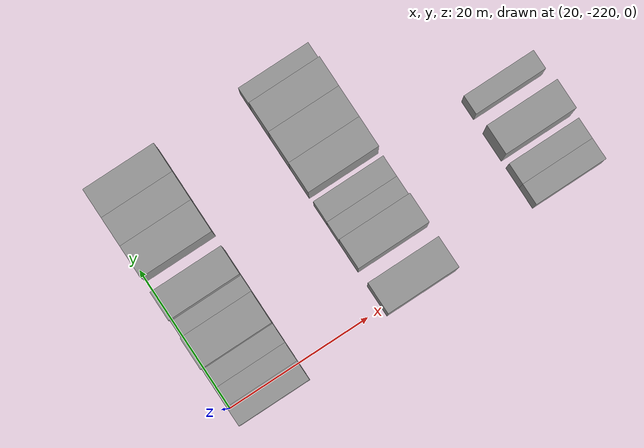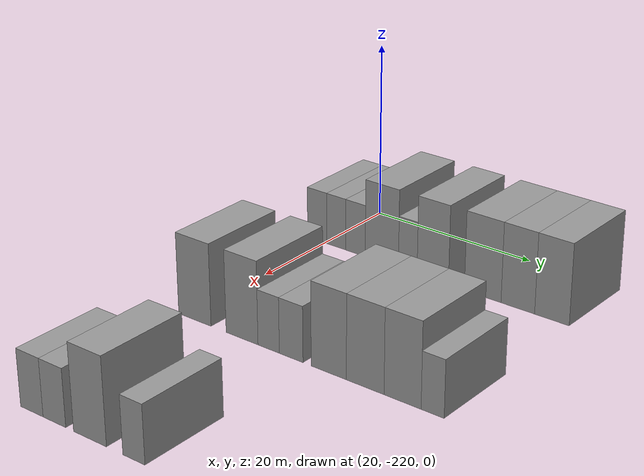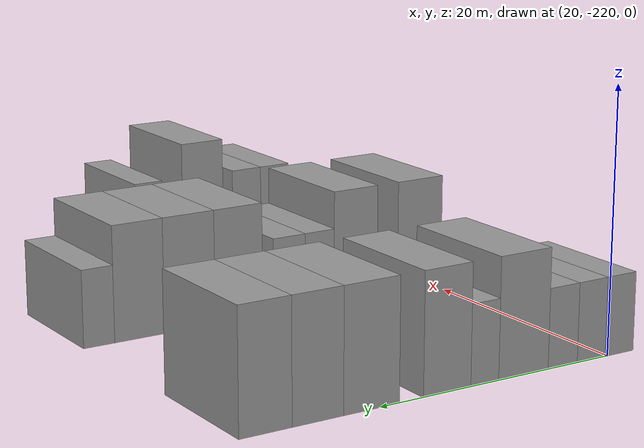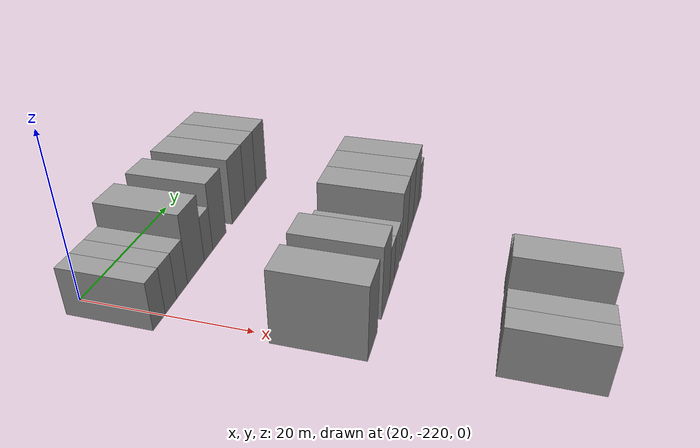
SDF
<sdf version="1.6">
 <world name="default">
  <model name="building_7">
   <static>1</static>
   <pose>25.0000 -221.1104 0 0.000000 0.000000 0.000000</pose>
   <link name="link">
    <pose>0 0 3.00 0 0 0</pose>
    <collision name="collision"><geometry><box><size>10.0000 2.6801 6.0000</size></box></geometry></collision>
    <visual name="visual">
     <cast_shadows>0</cast_shadows>
     <geometry><box><size>10.0000 2.6801 6.0000</size></box></geometry>
     <material>
      <script>
       <uri>model://grey_wall/materials/scripts</uri>
       <uri>model://grey_wall/materials/textures</uri>
       <name>vrc/grey_wall</name>
      </script>
     </material>
    </visual>
   </link>
  </model>
  <model name="building_8">
   <static>1</static>
   <pose>25.0000 -218.4601 0 0.000000 0.000000 0.000000</pose>
   <link name="link">
    <pose>0 0 3.00 0 0 0</pose>
    <collision name="collision"><geometry><box><size>10.0000 2.6207 6.0000</size></box></geometry></collision>
    <visual name="visual">
     <cast_shadows>0</cast_shadows>
     <geometry><box><size>10.0000 2.6207 6.0000</size></box></geometry>
     <material>
      <script>
       <uri>model://grey_wall/materials/scripts</uri>
       <uri>model://grey_wall/materials/textures</uri>
       <name>vrc/grey_wall</name>
      </script>
     </material>
    </visual>
   </link>
  </model>
  <model name="building_9">
   <static>1</static>
   <pose>25.0000 -215.8077 0 0.000000 0.000000 0.000000</pose>
   <link name="link">
    <pose>0 0 3.00 0 0 0</pose>
    <collision name="collision"><geometry><box><size>10.0000 2.6840 6.0000</size></box></geometry></collision>
    <visual name="visual">
     <cast_shadows>0</cast_shadows>
     <geometry><box><size>10.0000 2.6840 6.0000</size></box></geometry>
     <material>
      <script>
       <uri>model://grey_wall/materials/scripts</uri>
       <uri>model://grey_wall/materials/textures</uri>
       <name>vrc/grey_wall</name>
      </script>
     </material>
    </visual>
   </link>
  </model>
  <model name="building_10">
   <static>1</static>
   <pose>25.0000 -212.2497 0 0.000000 0.000000 0.000000</pose>
   <link name="link">
    <pose>0 0 4.50 0 0 0</pose>
    <collision name="collision"><geometry><box><size>10.0000 4.4320 9.0000</size></box></geometry></collision>
    <visual name="visual">
     <cast_shadows>0</cast_shadows>
     <geometry><box><size>10.0000 4.4320 9.0000</size></box></geometry>
     <material>
      <script>
       <uri>model://grey_wall/materials/scripts</uri>
       <uri>model://grey_wall/materials/textures</uri>
       <name>vrc/grey_wall</name>
      </script>
     </material>
    </visual>
   </link>
  </model>
  <model name="building_11">
   <static>1</static>
   <pose>25.0000 -208.8162 0 0.000000 0.000000 0.000000</pose>
   <link name="link">
    <pose>0 0 3.00 0 0 0</pose>
    <collision name="collision"><geometry><box><size>10.0000 2.4350 6.0000</size></box></geometry></collision>
    <visual name="visual">
     <cast_shadows>0</cast_shadows>
     <geometry><box><size>10.0000 2.4350 6.0000</size></box></geometry>
     <material>
      <script>
       <uri>model://grey_wall/materials/scripts</uri>
       <uri>model://grey_wall/materials/textures</uri>
       <name>vrc/grey_wall</name>
      </script>
     </material>
    </visual>
   </link>
  </model>
  <model name="building_12">
   <static>1</static>
   <pose>25.0000 -205.5930 0 0.000000 0.000000 0.000000</pose>
   <link name="link">
    <pose>0 0 4.50 0 0 0</pose>
    <collision name="collision"><geometry><box><size>10.0000 4.0115 9.0000</size></box></geometry></collision>
    <visual name="visual">
     <cast_shadows>0</cast_shadows>
     <geometry><box><size>10.0000 4.0115 9.0000</size></box></geometry>
     <material>
      <script>
       <uri>model://grey_wall/materials/scripts</uri>
       <uri>model://grey_wall/materials/textures</uri>
       <name>vrc/grey_wall</name>
      </script>
     </material>
    </visual>
   </link>
  </model>
  <model name="building_13">
   <static>1</static>
   <pose>25.0000 -199.3401 0 0.000000 0.000000 0.000000</pose>
   <link name="link">
    <pose>0 0 4.50 0 0 0</pose>
    <collision name="collision"><geometry><box><size>10.0000 4.4942 9.0000</size></box></geometry></collision>
    <visual name="visual">
     <cast_shadows>0</cast_shadows>
     <geometry><box><size>10.0000 4.4942 9.0000</size></box></geometry>
     <material>
      <script>
       <uri>model://grey_wall/materials/scripts</uri>
       <uri>model://grey_wall/materials/textures</uri>
       <name>vrc/grey_wall</name>
      </script>
     </material>
    </visual>
   </link>
  </model>
  <model name="building_14">
   <static>1</static>
   <pose>25.0000 -195.0859 0 0.000000 0.000000 0.000000</pose>
   <link name="link">
    <pose>0 0 4.50 0 0 0</pose>
    <collision name="collision"><geometry><box><size>10.0000 4.0142 9.0000</size></box></geometry></collision>
    <visual name="visual">
     <cast_shadows>0</cast_shadows>
     <geometry><box><size>10.0000 4.0142 9.0000</size></box></geometry>
     <material>
      <script>
       <uri>model://grey_wall/materials/scripts</uri>
       <uri>model://grey_wall/materials/textures</uri>
       <name>vrc/grey_wall</name>
      </script>
     </material>
    </visual>
   </link>
  </model>
  <model name="building_15">
   <static>1</static>
   <pose>25.0000 -191.0674 0 0.000000 0.000000 0.000000</pose>
   <link name="link">
    <pose>0 0 4.50 0 0 0</pose>
    <collision name="collision"><geometry><box><size>10.0000 4.0227 9.0000</size></box></geometry></collision>
    <visual name="visual">
     <cast_shadows>0</cast_shadows>
     <geometry><box><size>10.0000 4.0227 9.0000</size></box></geometry>
     <material>
      <script>
       <uri>model://grey_wall/materials/scripts</uri>
       <uri>model://grey_wall/materials/textures</uri>
       <name>vrc/grey_wall</name>
      </script>
     </material>
    </visual>
   </link>
  </model>
  <model name="building_129">
   <static>1</static>
   <pose>47.0000 -218.9601 0 0.000000 0.000000 0.000000</pose>
   <link name="link">
    <pose>0 0 4.50 0 0 0</pose>
    <collision name="collision"><geometry><box><size>10.0000 4.3624 9.0000</size></box></geometry></collision>
    <visual name="visual">
     <cast_shadows>0</cast_shadows>
     <geometry><box><size>10.0000 4.3624 9.0000</size></box></geometry>
     <material>
      <script>
       <uri>model://grey_wall/materials/scripts</uri>
       <uri>model://grey_wall/materials/textures</uri>
       <name>vrc/grey_wall</name>
      </script>
     </material>
    </visual>
   </link>
  </model>
  <model name="building_130">
   <static>1</static>
   <pose>47.0000 -212.7164 0 0.000000 0.000000 0.000000</pose>
   <link name="link">
    <pose>0 0 4.50 0 0 0</pose>
    <collision name="collision"><geometry><box><size>10.0000 4.1249 9.0000</size></box></geometry></collision>
    <visual name="visual">
     <cast_shadows>0</cast_shadows>
     <geometry><box><size>10.0000 4.1249 9.0000</size></box></geometry>
     <material>
      <script>
       <uri>model://grey_wall/materials/scripts</uri>
       <uri>model://grey_wall/materials/textures</uri>
       <name>vrc/grey_wall</name>
      </script>
     </material>
    </visual>
   </link>
  </model>
  <model name="building_131">
   <static>1</static>
   <pose>47.0000 -209.3025 0 0.000000 0.000000 0.000000</pose>
   <link name="link">
    <pose>0 0 3.00 0 0 0</pose>
    <collision name="collision"><geometry><box><size>10.0000 2.7029 6.0000</size></box></geometry></collision>
    <visual name="visual">
     <cast_shadows>0</cast_shadows>
     <geometry><box><size>10.0000 2.7029 6.0000</size></box></geometry>
     <material>
      <script>
       <uri>model://grey_wall/materials/scripts</uri>
       <uri>model://grey_wall/materials/textures</uri>
       <name>vrc/grey_wall</name>
      </script>
     </material>
    </visual>
   </link>
  </model>
  <model name="building_132">
   <static>1</static>
   <pose>47.0000 -206.4843 0 0.000000 0.000000 0.000000</pose>
   <link name="link">
    <pose>0 0 3.00 0 0 0</pose>
    <collision name="collision"><geometry><box><size>10.0000 2.9336 6.0000</size></box></geometry></collision>
    <visual name="visual">
     <cast_shadows>0</cast_shadows>
     <geometry><box><size>10.0000 2.9336 6.0000</size></box></geometry>
     <material>
      <script>
       <uri>model://grey_wall/materials/scripts</uri>
       <uri>model://grey_wall/materials/textures</uri>
       <name>vrc/grey_wall</name>
      </script>
     </material>
    </visual>
   </link>
  </model>
  <model name="building_133">
   <static>1</static>
   <pose>47.0000 -201.9062 0 0.000000 0.000000 0.000000</pose>
   <link name="link">
    <pose>0 0 4.50 0 0 0</pose>
    <collision name="collision"><geometry><box><size>10.0000 4.2226 9.0000</size></box></geometry></collision>
    <visual name="visual">
     <cast_shadows>0</cast_shadows>
     <geometry><box><size>10.0000 4.2226 9.0000</size></box></geometry>
     <material>
      <script>
       <uri>model://grey_wall/materials/scripts</uri>
       <uri>model://grey_wall/materials/textures</uri>
       <name>vrc/grey_wall</name>
      </script>
     </material>
    </visual>
   </link>
  </model>
  <model name="building_134">
   <static>1</static>
   <pose>47.0000 -197.6043 0 0.000000 0.000000 0.000000</pose>
   <link name="link">
    <pose>0 0 4.50 0 0 0</pose>
    <collision name="collision"><geometry><box><size>10.0000 4.3812 9.0000</size></box></geometry></collision>
    <visual name="visual">
     <cast_shadows>0</cast_shadows>
     <geometry><box><size>10.0000 4.3812 9.0000</size></box></geometry>
     <material>
      <script>
       <uri>model://grey_wall/materials/scripts</uri>
       <uri>model://grey_wall/materials/textures</uri>
       <name>vrc/grey_wall</name>
      </script>
     </material>
    </visual>
   </link>
  </model>
  <model name="building_135">
   <static>1</static>
   <pose>47.0000 -193.3291 0 0.000000 0.000000 0.000000</pose>
   <link name="link">
    <pose>0 0 4.50 0 0 0</pose>
    <collision name="collision"><geometry><box><size>10.0000 4.1691 9.0000</size></box></geometry></collision>
    <visual name="visual">
     <cast_shadows>0</cast_shadows>
     <geometry><box><size>10.0000 4.1691 9.0000</size></box></geometry>
     <material>
      <script>
       <uri>model://grey_wall/materials/scripts</uri>
       <uri>model://grey_wall/materials/textures</uri>
       <name>vrc/grey_wall</name>
      </script>
     </material>
    </visual>
   </link>
  </model>
  <model name="building_136">
   <static>1</static>
   <pose>47.0000 -189.9757 0 0.000000 0.000000 0.000000</pose>
   <link name="link">
    <pose>0 0 3.00 0 0 0</pose>
    <collision name="collision"><geometry><box><size>10.0000 2.5377 6.0000</size></box></geometry></collision>
    <visual name="visual">
     <cast_shadows>0</cast_shadows>
     <geometry><box><size>10.0000 2.5377 6.0000</size></box></geometry>
     <material>
      <script>
       <uri>model://grey_wall/materials/scripts</uri>
       <uri>model://grey_wall/materials/textures</uri>
       <name>vrc/grey_wall</name>
      </script>
     </material>
    </visual>
   </link>
  </model>
  <model name="building_237">
   <static>1</static>
   <pose>69.0000 -218.4774 0 0.000000 0.000000 0.000000</pose>
   <link name="link">
    <pose>0 0 3.00 0 0 0</pose>
    <collision name="collision"><geometry><box><size>10.0000 2.9570 6.0000</size></box></geometry></collision>
    <visual name="visual">
     <cast_shadows>0</cast_shadows>
     <geometry><box><size>10.0000 2.9570 6.0000</size></box></geometry>
     <material>
      <script>
       <uri>model://grey_wall/materials/scripts</uri>
       <uri>model://grey_wall/materials/textures</uri>
       <name>vrc/grey_wall</name>
      </script>
     </material>
    </visual>
   </link>
  </model>
  <model name="building_238">
   <static>1</static>
   <pose>69.0000 -215.5367 0 0.000000 0.000000 0.000000</pose>
   <link name="link">
    <pose>0 0 3.00 0 0 0</pose>
    <collision name="collision"><geometry><box><size>10.0000 2.9245 6.0000</size></box></geometry></collision>
    <visual name="visual">
     <cast_shadows>0</cast_shadows>
     <geometry><box><size>10.0000 2.9245 6.0000</size></box></geometry>
     <material>
      <script>
       <uri>model://grey_wall/materials/scripts</uri>
       <uri>model://grey_wall/materials/textures</uri>
       <name>vrc/grey_wall</name>
      </script>
     </material>
    </visual>
   </link>
  </model>
  <model name="building_239">
   <static>1</static>
   <pose>69.0000 -211.0267 0 0.000000 0.000000 0.000000</pose>
   <link name="link">
    <pose>0 0 4.50 0 0 0</pose>
    <collision name="collision"><geometry><box><size>10.0000 4.0953 9.0000</size></box></geometry></collision>
    <visual name="visual">
     <cast_shadows>0</cast_shadows>
     <geometry><box><size>10.0000 4.0953 9.0000</size></box></geometry>
     <material>
      <script>
       <uri>model://grey_wall/materials/scripts</uri>
       <uri>model://grey_wall/materials/textures</uri>
       <name>vrc/grey_wall</name>
      </script>
     </material>
    </visual>
   </link>
  </model>
  <model name="building_240">
   <static>1</static>
   <pose>69.0000 -205.6554 0 0.000000 0.000000 0.000000</pose>
   <link name="link">
    <pose>0 0 3.00 0 0 0</pose>
    <collision name="collision"><geometry><box><size>10.0000 2.6475 6.0000</size></box></geometry></collision>
    <visual name="visual">
     <cast_shadows>0</cast_shadows>
     <geometry><box><size>10.0000 2.6475 6.0000</size></box></geometry>
     <material>
      <script>
       <uri>model://grey_wall/materials/scripts</uri>
       <uri>model://grey_wall/materials/textures</uri>
       <name>vrc/grey_wall</name>
      </script>
     </material>
    </visual>
   </link>
  </model>
 </world>
</sdf>
